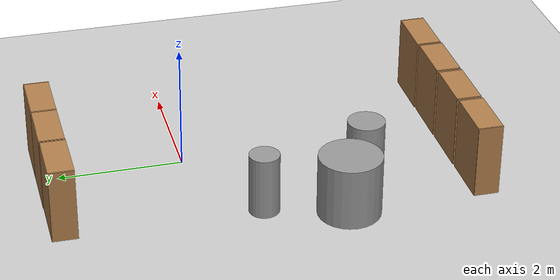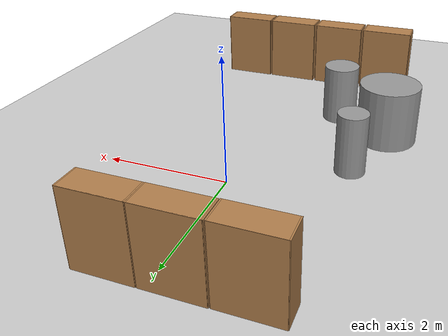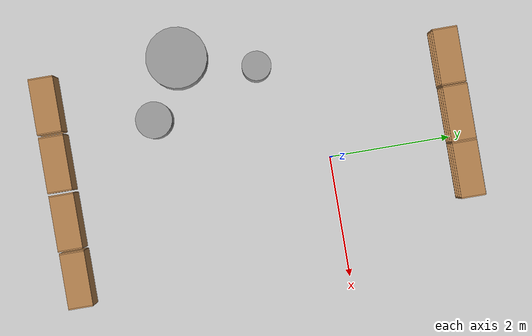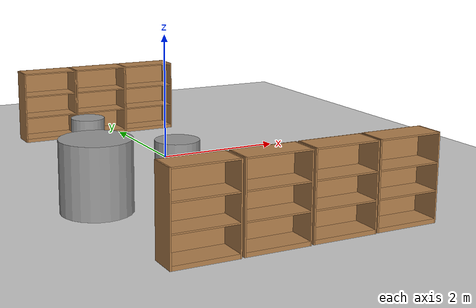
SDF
<sdf version="1.7">
 <world name="default">
  <model name="ground_plane">
   <static>1</static>
   <link name="link">
    <collision name="collision">
     <geometry><plane><normal>0 0 1</normal><size>100 100</size></plane></geometry>
     <surface><friction><ode><mu>100</mu><mu2>50</mu2></ode></friction></surface>
    </collision>
    <visual name="visual">
     <cast_shadows>0</cast_shadows>
     <geometry><plane><normal>0 0 1</normal><size>100 100</size></plane></geometry>
     <material>
      <script><uri>file://media/materials/scripts/gazebo.material</uri><name>Gazebo/Grey</name></script>
     </material>
    </visual>
   </link>
  </model>
  <model name="bookshelf">
   <static>1</static>
   <link name="link">
    <inertial><mass>1</mass></inertial>
    <collision name="back">
     <pose>0 0.005 0.6 0 -0 0</pose>
     <geometry><box><size>0.9 0.01 1.2</size></box></geometry>
    </collision>
    <visual name="visual1">
     <pose>0 0.005 0.6 0 -0 0</pose>
     <geometry><box><size>0.9 0.01 1.2</size></box></geometry>
     <material>
      <script><uri>file://media/materials/scripts/gazebo.material</uri><name>Gazebo/Wood</name></script>
     </material>
    </visual>
    <collision name="left_side">
     <pose>0.45 -0.195 0.6 0 -0 0</pose>
     <geometry><box><size>0.02 0.4 1.2</size></box></geometry>
    </collision>
    <visual name="visual2">
     <pose>0.45 -0.195 0.6 0 -0 0</pose>
     <geometry><box><size>0.02 0.4 1.2</size></box></geometry>
     <material>
      <script><uri>file://media/materials/scripts/gazebo.material</uri><name>Gazebo/Wood</name></script>
     </material>
    </visual>
    <collision name="right_side">
     <pose>-0.45 -0.195 0.6 0 -0 0</pose>
     <geometry><box><size>0.02 0.4 1.2</size></box></geometry>
    </collision>
    <visual name="visual3">
     <pose>-0.45 -0.195 0.6 0 -0 0</pose>
     <geometry><box><size>0.02 0.4 1.2</size></box></geometry>
     <material>
      <script><uri>file://media/materials/scripts/gazebo.material</uri><name>Gazebo/Wood</name></script>
     </material>
    </visual>
    <collision name="bottom">
     <pose>0 -0.195 0.03 0 -0 0</pose>
     <geometry><box><size>0.88 0.4 0.06</size></box></geometry>
    </collision>
    <visual name="visual4">
     <pose>0 -0.195 0.03 0 -0 0</pose>
     <geometry><box><size>0.88 0.4 0.06</size></box></geometry>
     <material>
      <script><uri>file://media/materials/scripts/gazebo.material</uri><name>Gazebo/Wood</name></script>
     </material>
    </visual>
    <collision name="top">
     <pose>0 -0.195 1.19 0 -0 0</pose>
     <geometry><box><size>0.88 0.4 0.02</size></box></geometry>
    </collision>
    <visual name="visual5">
     <pose>0 -0.195 1.19 0 -0 0</pose>
     <geometry><box><size>0.88 0.4 0.02</size></box></geometry>
     <material>
      <script><uri>file://media/materials/scripts/gazebo.material</uri><name>Gazebo/Wood</name></script>
     </material>
    </visual>
    <collision name="low_shelf">
     <pose>0 -0.195 0.43 0 -0 0</pose>
     <geometry><box><size>0.88 0.4 0.02</size></box></geometry>
    </collision>
    <visual name="visual6">
     <pose>0 -0.195 0.43 0 -0 0</pose>
     <geometry><box><size>0.88 0.4 0.02</size></box></geometry>
     <material>
      <script><uri>file://media/materials/scripts/gazebo.material</uri><name>Gazebo/Wood</name></script>
     </material>
    </visual>
    <collision name="high_shelf">
     <pose>0 -0.195 0.8 0 -0 0</pose>
     <geometry><box><size>0.88 0.4 0.02</size></box></geometry>
    </collision>
    <visual name="visual7">
     <pose>0 -0.195 0.8 0 -0 0</pose>
     <geometry><box><size>0.88 0.4 0.02</size></box></geometry>
     <material>
      <script><uri>file://media/materials/scripts/gazebo.material</uri><name>Gazebo/Wood</name></script>
     </material>
    </visual>
   </link>
   <pose>0.560097 2.33632 0 0 -0 0</pose>
  </model>
  <model name="bookshelf_0">
   <static>1</static>
   <link name="link">
    <inertial><mass>1</mass></inertial>
    <collision name="back">
     <pose>0 0.005 0.6 0 -0 0</pose>
     <geometry><box><size>0.9 0.01 1.2</size></box></geometry>
    </collision>
    <visual name="visual1">
     <pose>0 0.005 0.6 0 -0 0</pose>
     <geometry><box><size>0.9 0.01 1.2</size></box></geometry>
     <material>
      <script><uri>file://media/materials/scripts/gazebo.material</uri><name>Gazebo/Wood</name></script>
     </material>
    </visual>
    <collision name="left_side">
     <pose>0.45 -0.195 0.6 0 -0 0</pose>
     <geometry><box><size>0.02 0.4 1.2</size></box></geometry>
    </collision>
    <visual name="visual2">
     <pose>0.45 -0.195 0.6 0 -0 0</pose>
     <geometry><box><size>0.02 0.4 1.2</size></box></geometry>
     <material>
      <script><uri>file://media/materials/scripts/gazebo.material</uri><name>Gazebo/Wood</name></script>
     </material>
    </visual>
    <collision name="right_side">
     <pose>-0.45 -0.195 0.6 0 -0 0</pose>
     <geometry><box><size>0.02 0.4 1.2</size></box></geometry>
    </collision>
    <visual name="visual3">
     <pose>-0.45 -0.195 0.6 0 -0 0</pose>
     <geometry><box><size>0.02 0.4 1.2</size></box></geometry>
     <material>
      <script><uri>file://media/materials/scripts/gazebo.material</uri><name>Gazebo/Wood</name></script>
     </material>
    </visual>
    <collision name="bottom">
     <pose>0 -0.195 0.03 0 -0 0</pose>
     <geometry><box><size>0.88 0.4 0.06</size></box></geometry>
    </collision>
    <visual name="visual4">
     <pose>0 -0.195 0.03 0 -0 0</pose>
     <geometry><box><size>0.88 0.4 0.06</size></box></geometry>
     <material>
      <script><uri>file://media/materials/scripts/gazebo.material</uri><name>Gazebo/Wood</name></script>
     </material>
    </visual>
    <collision name="top">
     <pose>0 -0.195 1.19 0 -0 0</pose>
     <geometry><box><size>0.88 0.4 0.02</size></box></geometry>
    </collision>
    <visual name="visual5">
     <pose>0 -0.195 1.19 0 -0 0</pose>
     <geometry><box><size>0.88 0.4 0.02</size></box></geometry>
     <material>
      <script><uri>file://media/materials/scripts/gazebo.material</uri><name>Gazebo/Wood</name></script>
     </material>
    </visual>
    <collision name="low_shelf">
     <pose>0 -0.195 0.43 0 -0 0</pose>
     <geometry><box><size>0.88 0.4 0.02</size></box></geometry>
    </collision>
    <visual name="visual6">
     <pose>0 -0.195 0.43 0 -0 0</pose>
     <geometry><box><size>0.88 0.4 0.02</size></box></geometry>
     <material>
      <script><uri>file://media/materials/scripts/gazebo.material</uri><name>Gazebo/Wood</name></script>
     </material>
    </visual>
    <collision name="high_shelf">
     <pose>0 -0.195 0.8 0 -0 0</pose>
     <geometry><box><size>0.88 0.4 0.02</size></box></geometry>
    </collision>
    <visual name="visual7">
     <pose>0 -0.195 0.8 0 -0 0</pose>
     <geometry><box><size>0.88 0.4 0.02</size></box></geometry>
     <material>
      <script><uri>file://media/materials/scripts/gazebo.material</uri><name>Gazebo/Wood</name></script>
     </material>
    </visual>
   </link>
   <pose>-0.358587 2.33511 0 0 -0 0</pose>
  </model>
  <model name="bookshelf_1">
   <static>1</static>
   <link name="link">
    <inertial><mass>1</mass></inertial>
    <collision name="back">
     <pose>0 0.005 0.6 0 -0 0</pose>
     <geometry><box><size>0.9 0.01 1.2</size></box></geometry>
    </collision>
    <visual name="visual1">
     <pose>0 0.005 0.6 0 -0 0</pose>
     <geometry><box><size>0.9 0.01 1.2</size></box></geometry>
     <material>
      <script><uri>file://media/materials/scripts/gazebo.material</uri><name>Gazebo/Wood</name></script>
     </material>
    </visual>
    <collision name="left_side">
     <pose>0.45 -0.195 0.6 0 -0 0</pose>
     <geometry><box><size>0.02 0.4 1.2</size></box></geometry>
    </collision>
    <visual name="visual2">
     <pose>0.45 -0.195 0.6 0 -0 0</pose>
     <geometry><box><size>0.02 0.4 1.2</size></box></geometry>
     <material>
      <script><uri>file://media/materials/scripts/gazebo.material</uri><name>Gazebo/Wood</name></script>
     </material>
    </visual>
    <collision name="right_side">
     <pose>-0.45 -0.195 0.6 0 -0 0</pose>
     <geometry><box><size>0.02 0.4 1.2</size></box></geometry>
    </collision>
    <visual name="visual3">
     <pose>-0.45 -0.195 0.6 0 -0 0</pose>
     <geometry><box><size>0.02 0.4 1.2</size></box></geometry>
     <material>
      <script><uri>file://media/materials/scripts/gazebo.material</uri><name>Gazebo/Wood</name></script>
     </material>
    </visual>
    <collision name="bottom">
     <pose>0 -0.195 0.03 0 -0 0</pose>
     <geometry><box><size>0.88 0.4 0.06</size></box></geometry>
    </collision>
    <visual name="visual4">
     <pose>0 -0.195 0.03 0 -0 0</pose>
     <geometry><box><size>0.88 0.4 0.06</size></box></geometry>
     <material>
      <script><uri>file://media/materials/scripts/gazebo.material</uri><name>Gazebo/Wood</name></script>
     </material>
    </visual>
    <collision name="top">
     <pose>0 -0.195 1.19 0 -0 0</pose>
     <geometry><box><size>0.88 0.4 0.02</size></box></geometry>
    </collision>
    <visual name="visual5">
     <pose>0 -0.195 1.19 0 -0 0</pose>
     <geometry><box><size>0.88 0.4 0.02</size></box></geometry>
     <material>
      <script><uri>file://media/materials/scripts/gazebo.material</uri><name>Gazebo/Wood</name></script>
     </material>
    </visual>
    <collision name="low_shelf">
     <pose>0 -0.195 0.43 0 -0 0</pose>
     <geometry><box><size>0.88 0.4 0.02</size></box></geometry>
    </collision>
    <visual name="visual6">
     <pose>0 -0.195 0.43 0 -0 0</pose>
     <geometry><box><size>0.88 0.4 0.02</size></box></geometry>
     <material>
      <script><uri>file://media/materials/scripts/gazebo.material</uri><name>Gazebo/Wood</name></script>
     </material>
    </visual>
    <collision name="high_shelf">
     <pose>0 -0.195 0.8 0 -0 0</pose>
     <geometry><box><size>0.88 0.4 0.02</size></box></geometry>
    </collision>
    <visual name="visual7">
     <pose>0 -0.195 0.8 0 -0 0</pose>
     <geometry><box><size>0.88 0.4 0.02</size></box></geometry>
     <material>
      <script><uri>file://media/materials/scripts/gazebo.material</uri><name>Gazebo/Wood</name></script>
     </material>
    </visual>
   </link>
   <pose>-1.28762 2.3277 0 0 -0 0</pose>
  </model>
  <model name="unit_cylinder">
   <pose>-1.07017 -2.73193 0.499992 1e-06 1e-06 0</pose>
   <link name="link">
    <inertial>
     <mass>1</mass>
     <inertia><ixx>0.145833</ixx><ixy>0</ixy><ixz>0</ixz><iyy>0.145833</iyy><iyz>0</iyz><izz>0.125</izz></inertia>
    </inertial>
    <collision name="collision">
     <geometry><cylinder><radius>0.299499</radius><length>1</length></cylinder></geometry>
    </collision>
    <visual name="visual">
     <geometry><cylinder><radius>0.299499</radius><length>1</length></cylinder></geometry>
     <material>
      <script><name>Gazebo/Grey</name><uri>file://media/materials/scripts/gazebo.material</uri></script>
     </material>
    </visual>
   </link>
  </model>
  <model name="unit_cylinder_0">
   <pose>-1.65685 -0.948567 0.499992 1e-06 -1e-06 -1e-06</pose>
   <link name="link">
    <inertial>
     <mass>1</mass>
     <inertia><ixx>0.145833</ixx><ixy>0</ixy><ixz>0</ixz><iyy>0.145833</iyy><iyz>0</iyz><izz>0.125</izz></inertia>
    </inertial>
    <collision name="collision">
     <geometry><cylinder><radius>0.240848</radius><length>1</length></cylinder></geometry>
    </collision>
    <visual name="visual">
     <geometry><cylinder><radius>0.240848</radius><length>1</length></cylinder></geometry>
     <material>
      <script><name>Gazebo/Grey</name><uri>file://media/materials/scripts/gazebo.material</uri></script>
     </material>
    </visual>
   </link>
  </model>
  <model name="unit_cylinder_1">
   <pose>-2.00329 -2.20348 0.499998 3e-06 -4e-06 0</pose>
   <link name="link">
    <inertial>
     <mass>1</mass>
     <inertia><ixx>0.145833</ixx><ixy>0</ixy><ixz>0</ixz><iyy>0.145833</iyy><iyz>0</iyz><izz>0.125</izz></inertia>
    </inertial>
    <collision name="collision">
     <geometry><cylinder><radius>0.5</radius><length>1</length></cylinder></geometry>
    </collision>
    <visual name="visual">
     <geometry><cylinder><radius>0.5</radius><length>1</length></cylinder></geometry>
     <material>
      <script><name>Gazebo/Grey</name><uri>file://media/materials/scripts/gazebo.material</uri></script>
     </material>
    </visual>
   </link>
  </model>
  <model name="bookshelf_2">
   <static>1</static>
   <link name="link">
    <inertial><mass>1</mass></inertial>
    <collision name="back">
     <pose>0 0.005 0.6 0 -0 0</pose>
     <geometry><box><size>0.9 0.01 1.2</size></box></geometry>
    </collision>
    <visual name="visual1">
     <pose>0 0.005 0.6 0 -0 0</pose>
     <geometry><box><size>0.9 0.01 1.2</size></box></geometry>
     <material>
      <script><uri>file://media/materials/scripts/gazebo.material</uri><name>Gazebo/Wood</name></script>
     </material>
    </visual>
    <collision name="left_side">
     <pose>0.45 -0.195 0.6 0 -0 0</pose>
     <geometry><box><size>0.02 0.4 1.2</size></box></geometry>
    </collision>
    <visual name="visual2">
     <pose>0.45 -0.195 0.6 0 -0 0</pose>
     <geometry><box><size>0.02 0.4 1.2</size></box></geometry>
     <material>
      <script><uri>file://media/materials/scripts/gazebo.material</uri><name>Gazebo/Wood</name></script>
     </material>
    </visual>
    <collision name="right_side">
     <pose>-0.45 -0.195 0.6 0 -0 0</pose>
     <geometry><box><size>0.02 0.4 1.2</size></box></geometry>
    </collision>
    <visual name="visual3">
     <pose>-0.45 -0.195 0.6 0 -0 0</pose>
     <geometry><box><size>0.02 0.4 1.2</size></box></geometry>
     <material>
      <script><uri>file://media/materials/scripts/gazebo.material</uri><name>Gazebo/Wood</name></script>
     </material>
    </visual>
    <collision name="bottom">
     <pose>0 -0.195 0.03 0 -0 0</pose>
     <geometry><box><size>0.88 0.4 0.06</size></box></geometry>
    </collision>
    <visual name="visual4">
     <pose>0 -0.195 0.03 0 -0 0</pose>
     <geometry><box><size>0.88 0.4 0.06</size></box></geometry>
     <material>
      <script><uri>file://media/materials/scripts/gazebo.material</uri><name>Gazebo/Wood</name></script>
     </material>
    </visual>
    <collision name="top">
     <pose>0 -0.195 1.19 0 -0 0</pose>
     <geometry><box><size>0.88 0.4 0.02</size></box></geometry>
    </collision>
    <visual name="visual5">
     <pose>0 -0.195 1.19 0 -0 0</pose>
     <geometry><box><size>0.88 0.4 0.02</size></box></geometry>
     <material>
      <script><uri>file://media/materials/scripts/gazebo.material</uri><name>Gazebo/Wood</name></script>
     </material>
    </visual>
    <collision name="low_shelf">
     <pose>0 -0.195 0.43 0 -0 0</pose>
     <geometry><box><size>0.88 0.4 0.02</size></box></geometry>
    </collision>
    <visual name="visual6">
     <pose>0 -0.195 0.43 0 -0 0</pose>
     <geometry><box><size>0.88 0.4 0.02</size></box></geometry>
     <material>
      <script><uri>file://media/materials/scripts/gazebo.material</uri><name>Gazebo/Wood</name></script>
     </material>
    </visual>
    <collision name="high_shelf">
     <pose>0 -0.195 0.8 0 -0 0</pose>
     <geometry><box><size>0.88 0.4 0.02</size></box></geometry>
    </collision>
    <visual name="visual7">
     <pose>0 -0.195 0.8 0 -0 0</pose>
     <geometry><box><size>0.88 0.4 0.02</size></box></geometry>
     <material>
      <script><uri>file://media/materials/scripts/gazebo.material</uri><name>Gazebo/Wood</name></script>
     </material>
    </visual>
   </link>
   <pose>1.2604 -4.19478 0 0 -0 0</pose>
  </model>
  <model name="bookshelf_3">
   <static>1</static>
   <link name="link">
    <inertial><mass>1</mass></inertial>
    <collision name="back">
     <pose>0 0.005 0.6 0 -0 0</pose>
     <geometry><box><size>0.9 0.01 1.2</size></box></geometry>
    </collision>
    <visual name="visual1">
     <pose>0 0.005 0.6 0 -0 0</pose>
     <geometry><box><size>0.9 0.01 1.2</size></box></geometry>
     <material>
      <script><uri>file://media/materials/scripts/gazebo.material</uri><name>Gazebo/Wood</name></script>
     </material>
    </visual>
    <collision name="left_side">
     <pose>0.45 -0.195 0.6 0 -0 0</pose>
     <geometry><box><size>0.02 0.4 1.2</size></box></geometry>
    </collision>
    <visual name="visual2">
     <pose>0.45 -0.195 0.6 0 -0 0</pose>
     <geometry><box><size>0.02 0.4 1.2</size></box></geometry>
     <material>
      <script><uri>file://media/materials/scripts/gazebo.material</uri><name>Gazebo/Wood</name></script>
     </material>
    </visual>
    <collision name="right_side">
     <pose>-0.45 -0.195 0.6 0 -0 0</pose>
     <geometry><box><size>0.02 0.4 1.2</size></box></geometry>
    </collision>
    <visual name="visual3">
     <pose>-0.45 -0.195 0.6 0 -0 0</pose>
     <geometry><box><size>0.02 0.4 1.2</size></box></geometry>
     <material>
      <script><uri>file://media/materials/scripts/gazebo.material</uri><name>Gazebo/Wood</name></script>
     </material>
    </visual>
    <collision name="bottom">
     <pose>0 -0.195 0.03 0 -0 0</pose>
     <geometry><box><size>0.88 0.4 0.06</size></box></geometry>
    </collision>
    <visual name="visual4">
     <pose>0 -0.195 0.03 0 -0 0</pose>
     <geometry><box><size>0.88 0.4 0.06</size></box></geometry>
     <material>
      <script><uri>file://media/materials/scripts/gazebo.material</uri><name>Gazebo/Wood</name></script>
     </material>
    </visual>
    <collision name="top">
     <pose>0 -0.195 1.19 0 -0 0</pose>
     <geometry><box><size>0.88 0.4 0.02</size></box></geometry>
    </collision>
    <visual name="visual5">
     <pose>0 -0.195 1.19 0 -0 0</pose>
     <geometry><box><size>0.88 0.4 0.02</size></box></geometry>
     <material>
      <script><uri>file://media/materials/scripts/gazebo.material</uri><name>Gazebo/Wood</name></script>
     </material>
    </visual>
    <collision name="low_shelf">
     <pose>0 -0.195 0.43 0 -0 0</pose>
     <geometry><box><size>0.88 0.4 0.02</size></box></geometry>
    </collision>
    <visual name="visual6">
     <pose>0 -0.195 0.43 0 -0 0</pose>
     <geometry><box><size>0.88 0.4 0.02</size></box></geometry>
     <material>
      <script><uri>file://media/materials/scripts/gazebo.material</uri><name>Gazebo/Wood</name></script>
     </material>
    </visual>
    <collision name="high_shelf">
     <pose>0 -0.195 0.8 0 -0 0</pose>
     <geometry><box><size>0.88 0.4 0.02</size></box></geometry>
    </collision>
    <visual name="visual7">
     <pose>0 -0.195 0.8 0 -0 0</pose>
     <geometry><box><size>0.88 0.4 0.02</size></box></geometry>
     <material>
      <script><uri>file://media/materials/scripts/gazebo.material</uri><name>Gazebo/Wood</name></script>
     </material>
    </visual>
   </link>
   <pose>0.317675 -4.20544 0 0 -0 0</pose>
  </model>
  <model name="bookshelf_4">
   <static>1</static>
   <link name="link">
    <inertial><mass>1</mass></inertial>
    <collision name="back">
     <pose>0 0.005 0.6 0 -0 0</pose>
     <geometry><box><size>0.9 0.01 1.2</size></box></geometry>
    </collision>
    <visual name="visual1">
     <pose>0 0.005 0.6 0 -0 0</pose>
     <geometry><box><size>0.9 0.01 1.2</size></box></geometry>
     <material>
      <script><uri>file://media/materials/scripts/gazebo.material</uri><name>Gazebo/Wood</name></script>
     </material>
    </visual>
    <collision name="left_side">
     <pose>0.45 -0.195 0.6 0 -0 0</pose>
     <geometry><box><size>0.02 0.4 1.2</size></box></geometry>
    </collision>
    <visual name="visual2">
     <pose>0.45 -0.195 0.6 0 -0 0</pose>
     <geometry><box><size>0.02 0.4 1.2</size></box></geometry>
     <material>
      <script><uri>file://media/materials/scripts/gazebo.material</uri><name>Gazebo/Wood</name></script>
     </material>
    </visual>
    <collision name="right_side">
     <pose>-0.45 -0.195 0.6 0 -0 0</pose>
     <geometry><box><size>0.02 0.4 1.2</size></box></geometry>
    </collision>
    <visual name="visual3">
     <pose>-0.45 -0.195 0.6 0 -0 0</pose>
     <geometry><box><size>0.02 0.4 1.2</size></box></geometry>
     <material>
      <script><uri>file://media/materials/scripts/gazebo.material</uri><name>Gazebo/Wood</name></script>
     </material>
    </visual>
    <collision name="bottom">
     <pose>0 -0.195 0.03 0 -0 0</pose>
     <geometry><box><size>0.88 0.4 0.06</size></box></geometry>
    </collision>
    <visual name="visual4">
     <pose>0 -0.195 0.03 0 -0 0</pose>
     <geometry><box><size>0.88 0.4 0.06</size></box></geometry>
     <material>
      <script><uri>file://media/materials/scripts/gazebo.material</uri><name>Gazebo/Wood</name></script>
     </material>
    </visual>
    <collision name="top">
     <pose>0 -0.195 1.19 0 -0 0</pose>
     <geometry><box><size>0.88 0.4 0.02</size></box></geometry>
    </collision>
    <visual name="visual5">
     <pose>0 -0.195 1.19 0 -0 0</pose>
     <geometry><box><size>0.88 0.4 0.02</size></box></geometry>
     <material>
      <script><uri>file://media/materials/scripts/gazebo.material</uri><name>Gazebo/Wood</name></script>
     </material>
    </visual>
    <collision name="low_shelf">
     <pose>0 -0.195 0.43 0 -0 0</pose>
     <geometry><box><size>0.88 0.4 0.02</size></box></geometry>
    </collision>
    <visual name="visual6">
     <pose>0 -0.195 0.43 0 -0 0</pose>
     <geometry><box><size>0.88 0.4 0.02</size></box></geometry>
     <material>
      <script><uri>file://media/materials/scripts/gazebo.material</uri><name>Gazebo/Wood</name></script>
     </material>
    </visual>
    <collision name="high_shelf">
     <pose>0 -0.195 0.8 0 -0 0</pose>
     <geometry><box><size>0.88 0.4 0.02</size></box></geometry>
    </collision>
    <visual name="visual7">
     <pose>0 -0.195 0.8 0 -0 0</pose>
     <geometry><box><size>0.88 0.4 0.02</size></box></geometry>
     <material>
      <script><uri>file://media/materials/scripts/gazebo.material</uri><name>Gazebo/Wood</name></script>
     </material>
    </visual>
   </link>
   <pose>-0.637085 -4.21271 0 0 -0 0</pose>
  </model>
  <model name="bookshelf_5">
   <static>1</static>
   <link name="link">
    <inertial><mass>1</mass></inertial>
    <collision name="back">
     <pose>0 0.005 0.6 0 -0 0</pose>
     <geometry><box><size>0.9 0.01 1.2</size></box></geometry>
    </collision>
    <visual name="visual1">
     <pose>0 0.005 0.6 0 -0 0</pose>
     <geometry><box><size>0.9 0.01 1.2</size></box></geometry>
     <material>
      <script><uri>file://media/materials/scripts/gazebo.material</uri><name>Gazebo/Wood</name></script>
     </material>
    </visual>
    <collision name="left_side">
     <pose>0.45 -0.195 0.6 0 -0 0</pose>
     <geometry><box><size>0.02 0.4 1.2</size></box></geometry>
    </collision>
    <visual name="visual2">
     <pose>0.45 -0.195 0.6 0 -0 0</pose>
     <geometry><box><size>0.02 0.4 1.2</size></box></geometry>
     <material>
      <script><uri>file://media/materials/scripts/gazebo.material</uri><name>Gazebo/Wood</name></script>
     </material>
    </visual>
    <collision name="right_side">
     <pose>-0.45 -0.195 0.6 0 -0 0</pose>
     <geometry><box><size>0.02 0.4 1.2</size></box></geometry>
    </collision>
    <visual name="visual3">
     <pose>-0.45 -0.195 0.6 0 -0 0</pose>
     <geometry><box><size>0.02 0.4 1.2</size></box></geometry>
     <material>
      <script><uri>file://media/materials/scripts/gazebo.material</uri><name>Gazebo/Wood</name></script>
     </material>
    </visual>
    <collision name="bottom">
     <pose>0 -0.195 0.03 0 -0 0</pose>
     <geometry><box><size>0.88 0.4 0.06</size></box></geometry>
    </collision>
    <visual name="visual4">
     <pose>0 -0.195 0.03 0 -0 0</pose>
     <geometry><box><size>0.88 0.4 0.06</size></box></geometry>
     <material>
      <script><uri>file://media/materials/scripts/gazebo.material</uri><name>Gazebo/Wood</name></script>
     </material>
    </visual>
    <collision name="top">
     <pose>0 -0.195 1.19 0 -0 0</pose>
     <geometry><box><size>0.88 0.4 0.02</size></box></geometry>
    </collision>
    <visual name="visual5">
     <pose>0 -0.195 1.19 0 -0 0</pose>
     <geometry><box><size>0.88 0.4 0.02</size></box></geometry>
     <material>
      <script><uri>file://media/materials/scripts/gazebo.material</uri><name>Gazebo/Wood</name></script>
     </material>
    </visual>
    <collision name="low_shelf">
     <pose>0 -0.195 0.43 0 -0 0</pose>
     <geometry><box><size>0.88 0.4 0.02</size></box></geometry>
    </collision>
    <visual name="visual6">
     <pose>0 -0.195 0.43 0 -0 0</pose>
     <geometry><box><size>0.88 0.4 0.02</size></box></geometry>
     <material>
      <script><uri>file://media/materials/scripts/gazebo.material</uri><name>Gazebo/Wood</name></script>
     </material>
    </visual>
    <collision name="high_shelf">
     <pose>0 -0.195 0.8 0 -0 0</pose>
     <geometry><box><size>0.88 0.4 0.02</size></box></geometry>
    </collision>
    <visual name="visual7">
     <pose>0 -0.195 0.8 0 -0 0</pose>
     <geometry><box><size>0.88 0.4 0.02</size></box></geometry>
     <material>
      <script><uri>file://media/materials/scripts/gazebo.material</uri><name>Gazebo/Wood</name></script>
     </material>
    </visual>
   </link>
   <pose>-1.59203 -4.22 0 0 -0 0</pose>
  </model>
 </world>
</sdf>
